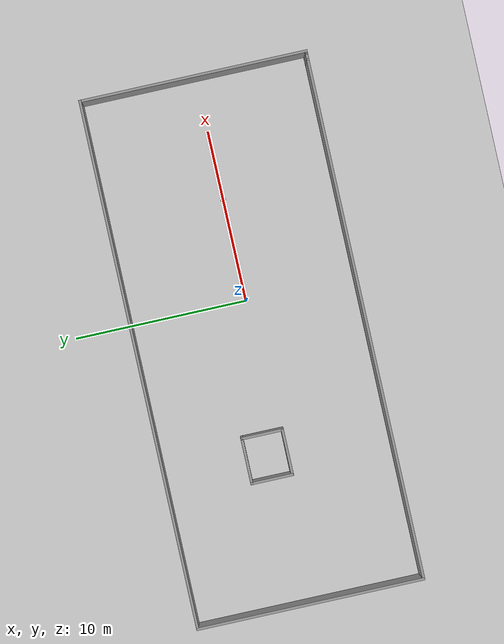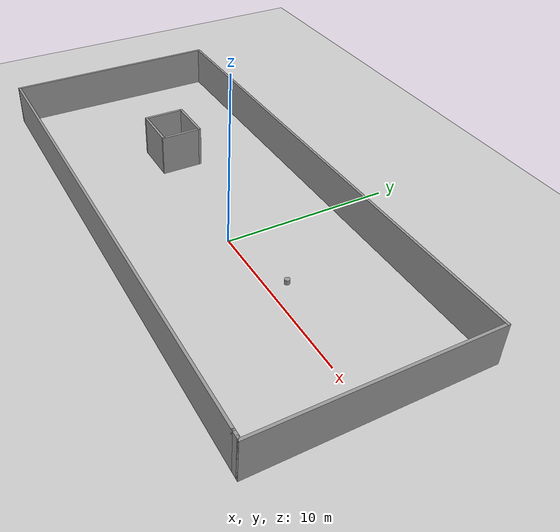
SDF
<sdf version="1.7">
 <world name="default">
  <light name="sun" type="directional">
   <pose>0 0 10 0 -0 0</pose>
   <diffuse>0.8 0.8 0.8 1</diffuse>
   <specular>0.2 0.2 0.2 1</specular>
   <attenuation>
    <range>1000</range>
    <constant>0.9</constant>
    <linear>0.01</linear>
    <quadratic>0.001</quadratic>
   </attenuation>
   <direction>-0.5 0.1 -0.9</direction>
   <spot><inner_angle>0</inner_angle><outer_angle>0</outer_angle><falloff>0</falloff></spot>
  </light>
  <model name="ground_plane">
   <static>1</static>
   <link name="link">
    <collision name="collision">
     <geometry><plane><normal>0 0 1</normal><size>100 100</size></plane></geometry>
     <surface>
      <contact><collide_bitmask>65535</collide_bitmask></contact>
      <friction><ode><mu>100</mu><mu2>50</mu2></ode></friction>
     </surface>
    </collision>
    <visual name="visual">
     <cast_shadows>0</cast_shadows>
     <geometry><plane><normal>0 0 1</normal><size>100 100</size></plane></geometry>
     <material>
      <script><uri>file://media/materials/scripts/gazebo.material</uri><name>Gazebo/Grey</name></script>
     </material>
    </visual>
   </link>
  </model>
  <gravity>0 0 -9.8</gravity>
  <magnetic_field>6e-06 2.3e-05 -4.2e-05</magnetic_field>
  <atmosphere type="adiabatic"/>
  <physics type="ode">
   <max_step_size>0.001</max_step_size>
   <real_time_factor>1</real_time_factor>
   <real_time_update_rate>1000</real_time_update_rate>
  </physics>
  <scene><ambient>0.4 0.4 0.4 1</ambient><background>0.7 0.7 0.7 1</background><shadows>1</shadows></scene>
  <spherical_coordinates>
   <surface_model>EARTH_WGS84</surface_model>
   <latitude_deg>0</latitude_deg>
   <longitude_deg>0</longitude_deg>
   <elevation>0</elevation>
   <heading_deg>0</heading_deg>
  </spherical_coordinates>
  <model name="Untitled3">
   <pose>-2.26592 0.178352 0 0 -0 0</pose>
   <link name="Wall_12">
    <collision name="Wall_12_Collision">
     <geometry><box><size>13.25 0.15 2.5</size></box></geometry>
     <pose>0 0 1.25 0 -0 0</pose>
    </collision>
    <visual name="Wall_12_Visual">
     <pose>0 0 1.25 0 -0 0</pose>
     <geometry><box><size>13.25 0.15 2.5</size></box></geometry>
     <material>
      <script><uri>file://media/materials/scripts/gazebo.material</uri><name>Gazebo/Grey</name></script>
      <ambient>1 1 1 1</ambient>
     </material>
     <meta><layer>0</layer></meta>
    </visual>
    <pose>-15.3 -0 0 0 -0 -1.5708</pose>
   </link>
   <link name="Wall_13">
    <collision name="Wall_13_Collision">
     <geometry><box><size>30.25 0.15 2.5</size></box></geometry>
     <pose>0 0 1.25 0 -0 0</pose>
    </collision>
    <visual name="Wall_13_Visual">
     <pose>0 0 1.25 0 -0 0</pose>
     <geometry><box><size>30.25 0.15 2.5</size></box></geometry>
     <material>
      <script><uri>file://media/materials/scripts/gazebo.material</uri><name>Gazebo/Grey</name></script>
      <ambient>1 1 1 1</ambient>
     </material>
     <meta><layer>0</layer></meta>
    </visual>
    <pose>-0.25 -6.55 0 0 -0 0</pose>
   </link>
   <link name="Wall_15">
    <collision name="Wall_15_Collision">
     <geometry><box><size>30.75 0.15 2.5</size></box></geometry>
     <pose>0 0 1.25 0 -0 0</pose>
    </collision>
    <visual name="Wall_15_Visual">
     <pose>0 0 1.25 0 -0 0</pose>
     <geometry><box><size>30.75 0.15 2.5</size></box></geometry>
     <material>
      <script><uri>file://media/materials/scripts/gazebo.material</uri><name>Gazebo/Grey</name></script>
      <ambient>1 1 1 1</ambient>
     </material>
     <meta><layer>0</layer></meta>
    </visual>
    <pose>0 6.55 0 0 -0 0</pose>
   </link>
   <link name="Wall_16">
    <collision name="Wall_16_Collision">
     <geometry><box><size>13.25 0.15 2.5</size></box></geometry>
     <pose>0 0 1.25 0 -0 0</pose>
    </collision>
    <visual name="Wall_16_Visual">
     <pose>0 0 1.25 0 -0 0</pose>
     <geometry><box><size>13.25 0.15 2.5</size></box></geometry>
     <material>
      <script><uri>file://media/materials/scripts/gazebo.material</uri><name>Gazebo/Grey</name></script>
      <ambient>1 1 1 1</ambient>
     </material>
     <meta><layer>0</layer></meta>
    </visual>
    <pose>15.3 -0 0 0 -0 -1.5708</pose>
   </link>
   <link name="Wall_18">
    <collision name="Wall_18_Collision">
     <geometry><box><size>0.5 0.15 2.5</size></box></geometry>
     <pose>0 0 1.25 0 -0 0</pose>
    </collision>
    <visual name="Wall_18_Visual">
     <pose>0 0 1.25 0 -0 0</pose>
     <geometry><box><size>0.5 0.15 2.5</size></box></geometry>
     <material>
      <script><uri>file://media/materials/scripts/gazebo.material</uri><name>Gazebo/Grey</name></script>
      <ambient>1 1 1 1</ambient>
     </material>
     <meta><layer>0</layer></meta>
    </visual>
    <pose>14.975 -6.55 0 0 -0 0</pose>
   </link>
   <link name="Wall_19">
    <collision name="Wall_19_Collision">
     <geometry><box><size>0.25 0.15 2.5</size></box></geometry>
     <pose>0 0 1.25 0 -0 0</pose>
    </collision>
    <visual name="Wall_19_Visual">
     <pose>0 0 1.25 0 -0 0</pose>
     <geometry><box><size>0.25 0.15 2.5</size></box></geometry>
     <material>
      <script><uri>file://media/materials/scripts/gazebo.material</uri><name>Gazebo/Grey</name></script>
      <ambient>1 1 1 1</ambient>
     </material>
     <meta><layer>0</layer></meta>
    </visual>
    <pose>15.2 -6.55 0 0 -0 0</pose>
   </link>
   <link name="Wall_21">
    <collision name="Wall_21_Collision">
     <geometry><box><size>2.5 0.15 2.5</size></box></geometry>
     <pose>0 0 1.25 0 -0 0</pose>
    </collision>
    <visual name="Wall_21_Visual">
     <pose>0 0 1.25 0 -0 0</pose>
     <geometry><box><size>2.5 0.15 2.5</size></box></geometry>
     <material>
      <script><uri>file://media/materials/scripts/gazebo.material</uri><name>Gazebo/Grey</name></script>
      <ambient>1 1 1 1</ambient>
     </material>
     <meta><layer>0</layer></meta>
    </visual>
    <pose>-7.92532 0.59104 0 0 -0 -1.5708</pose>
   </link>
   <link name="Wall_22">
    <collision name="Wall_22_Collision">
     <geometry><box><size>2.75 0.15 2.5</size></box></geometry>
     <pose>0 0 1.25 0 -0 0</pose>
    </collision>
    <visual name="Wall_22_Visual">
     <pose>0 0 1.25 0 -0 0</pose>
     <geometry><box><size>2.75 0.15 2.5</size></box></geometry>
     <material>
      <script><uri>file://media/materials/scripts/gazebo.material</uri><name>Gazebo/Grey</name></script>
      <ambient>1 1 1 1</ambient>
     </material>
     <meta><layer>0</layer></meta>
    </visual>
    <pose>-6.62532 -0.583959 0 0 -0 0</pose>
   </link>
   <link name="Wall_23">
    <collision name="Wall_23_Collision">
     <geometry><box><size>2.5 0.15 2.5</size></box></geometry>
     <pose>0 0 1.25 0 -0 0</pose>
    </collision>
    <visual name="Wall_23_Visual">
     <pose>0 0 1.25 0 -0 0</pose>
     <geometry><box><size>2.5 0.15 2.5</size></box></geometry>
     <material>
      <script><uri>file://media/materials/scripts/gazebo.material</uri><name>Gazebo/Grey</name></script>
      <ambient>1 1 1 1</ambient>
     </material>
     <meta><layer>0</layer></meta>
    </visual>
    <pose>-5.32532 0.59104 0 0 -0 1.5708</pose>
   </link>
   <link name="Wall_24">
    <collision name="Wall_24_Collision">
     <geometry><box><size>2.75 0.15 2.5</size></box></geometry>
     <pose>0 0 1.25 0 -0 0</pose>
    </collision>
    <visual name="Wall_24_Visual">
     <pose>0 0 1.25 0 -0 0</pose>
     <geometry><box><size>2.75 0.15 2.5</size></box></geometry>
     <material>
      <script><uri>file://media/materials/scripts/gazebo.material</uri><name>Gazebo/Grey</name></script>
      <ambient>1 1 1 1</ambient>
     </material>
     <meta><layer>0</layer></meta>
    </visual>
    <pose>-6.62532 1.76604 0 0 -0 3.14159</pose>
   </link>
   <static>1</static>
  </model>
  <model name="unit_cylinder">
   <pose>5.87782 0.026682 1.86956 0 -0 0.000844</pose>
   <link name="link">
    <inertial>
     <mass>1</mass>
     <inertia><ixx>0.145833</ixx><ixy>0</ixy><ixz>0</ixz><iyy>0.145833</iyy><iyz>0</iyz><izz>0.125</izz></inertia>
    </inertial>
    <collision name="collision">
     <geometry><cylinder><radius>0.14223</radius><length>0.267441</length></cylinder></geometry>
    </collision>
    <visual name="visual">
     <geometry><cylinder><radius>0.14223</radius><length>0.267441</length></cylinder></geometry>
     <material>
      <script><name>Gazebo/Grey</name><uri>file://media/materials/scripts/gazebo.material</uri></script>
     </material>
    </visual>
   </link>
  </model>
 </world>
</sdf>
